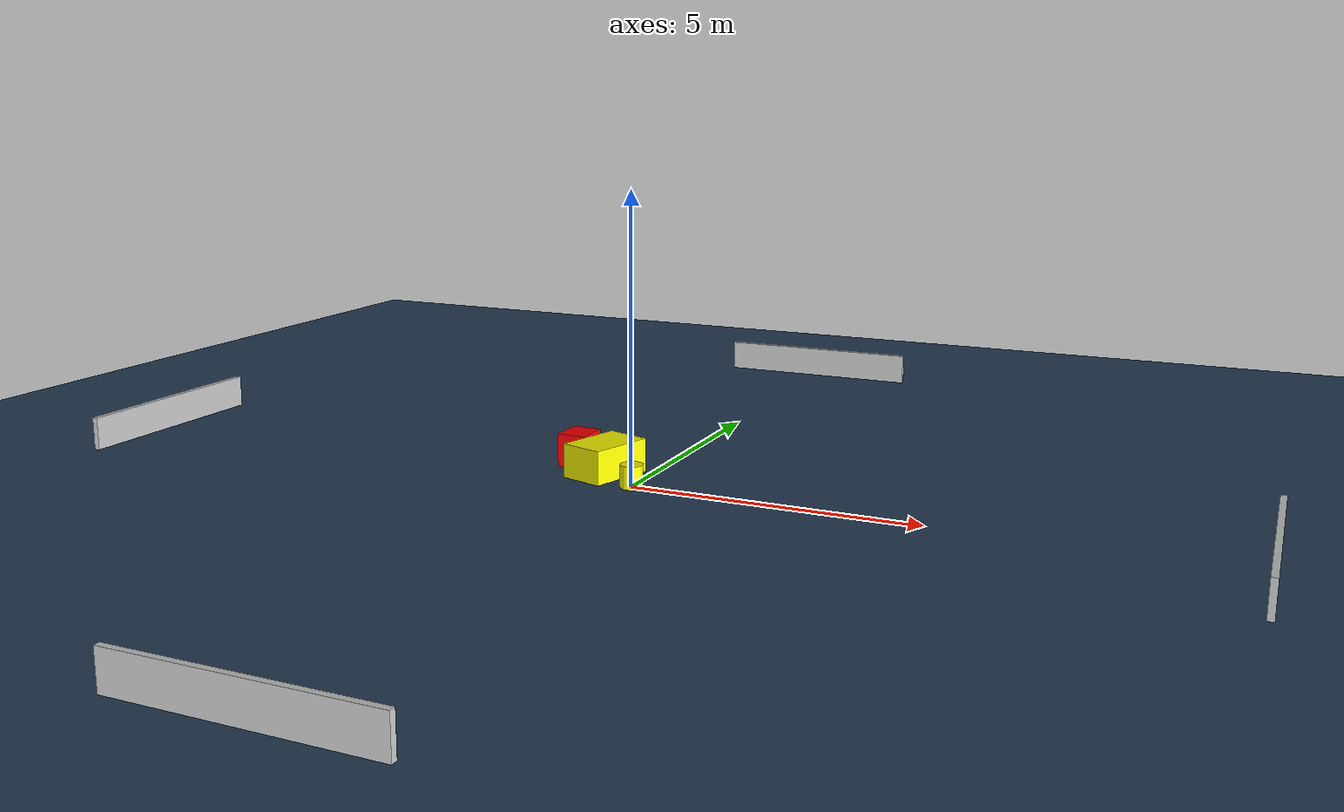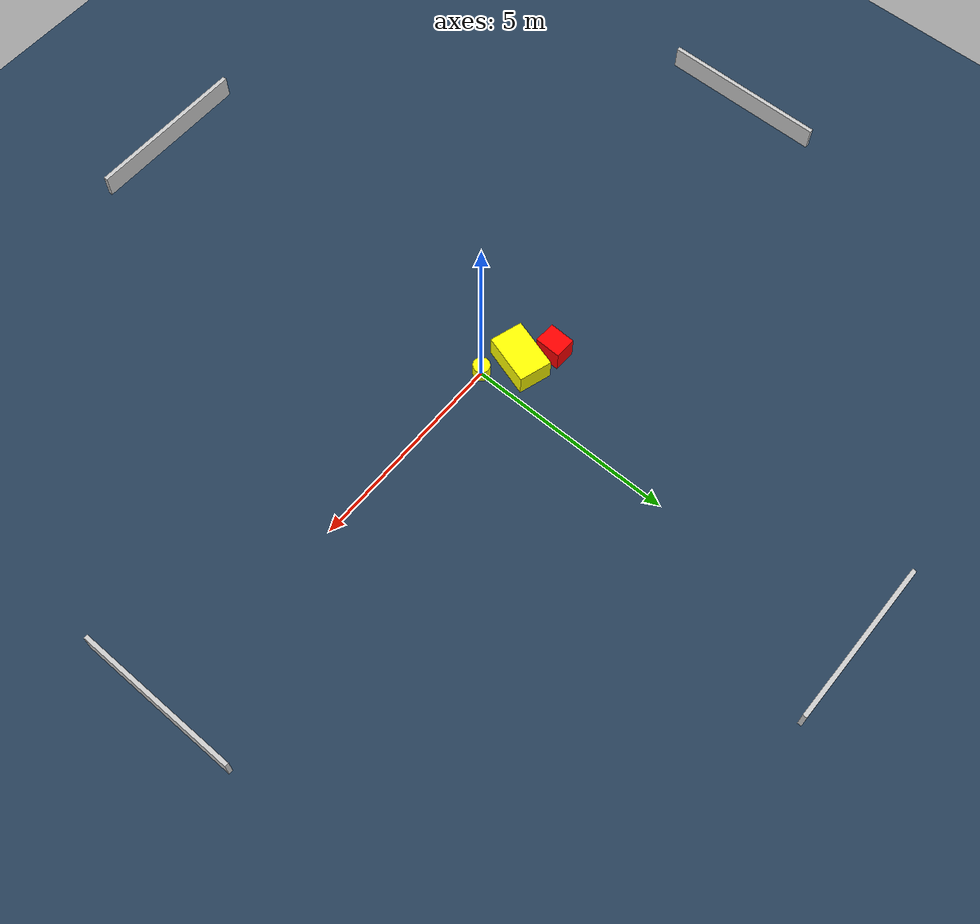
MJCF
<?xml version="1.0" ?>
<mujoco model="generated_environment">
  <option timestep="0.01" integrator="RK4" cone="elliptic"/>
  <default>
    <geom density="1"/>
  </default>
  <asset>
    <texture builtin="gradient" height="3072" name="skybox" rgb1="0.3 0.5 0.7" rgb2="0 0 0" type="skybox" width="512"/>
    <texture builtin="checker" height="300" name="groundplane" rgb1="0.2 0.3 0.4" rgb2="0.1 0.2 0.3" type="2d" width="300"/>
    <material name="groundplane" reflectance="0.2" texrepeat="5 5" texture="groundplane"/>
  </asset>
  <worldbody>
    <light dir="0 0 -1" directional="true" pos="0 0 1.5"/>
    <geom condim="3" friction="0.5 0.005 0.001" material="groundplane" name="floor" pos="0 0 0" size="0 0 0.05" type="plane"/>
    <body name="walls">
      <geom name="wall_1" condim="4" pos="-10.0 0.0 0.3" rgba="0.800000011920929 0.800000011920929 0.800000011920929 1.0" size="0.05 2.0 0.3" type="box"/>
      <geom name="wall_2" condim="4" pos="10.0 0.0 0.3" rgba="0.800000011920929 0.800000011920929 0.800000011920929 1.0" size="0.05 2.0 0.3" type="box"/>
      <geom name="wall_3" condim="4" pos="0.0 -10.0 0.3" rgba="0.800000011920929 0.800000011920929 0.800000011920929 1.0" size="2.0 0.05 0.3" type="box"/>
      <geom name="wall_4" condim="4" pos="0.0 10.0 0.3" rgba="0.800000011920929 0.800000011920929 0.800000011920929 1.0" size="2.0 0.05 0.3" type="box"/>
    </body>
    <body name="robot">
      <joint name="joint_x" type="slide" pos="0 0 0" axis="1 0 0"/>
      <joint name="joint_y" type="slide" pos="0 0 0" axis="0 1 0"/>
      <geom name="robot" type="cylinder" pos="0.0 0.0 0.2" size="0.2 0.2 0.0" mass="5.0" friction="1.0 0.005 0.0001" condim="4" rgba="1.0 1.0 0.0 1.0"/>
    </body>
    <body name="obstacle_1_movable">
      <geom name="obstacle_1_movable" condim="4" pos="-0.7487621774235858 0.510048820194443 0.3" euler="0 0 162.90299345434437" friction="0.0 0.005 0.001" rgba="1.0 1.0 0.0 1.0" size="0.4021518002072507 0.6078033238630542 0.3" type="box" mass="0.1"/>
      <joint type="free"/>
    </body>
    <body name="obstacle_2_static">
      <geom name="obstacle_2_static" condim="4" pos="-1.45584528198497 0.9154056517189478 0.3" euler="0 0 358.2630056719938" friction="0.0 0.005 0.001" rgba="1.0 0.0 0.0 1.0" size="0.26164529625019195 0.31348158594948816 0.3" type="box"/>
    </body>
  </worldbody>
  <actuator>
    <motor name="actuator_x" joint="joint_x" gear="1" ctrlrange="-1 1"/>
    <motor name="actuator_y" joint="joint_y" gear="1" ctrlrange="-1 1"/>
  </actuator>
</mujoco>
